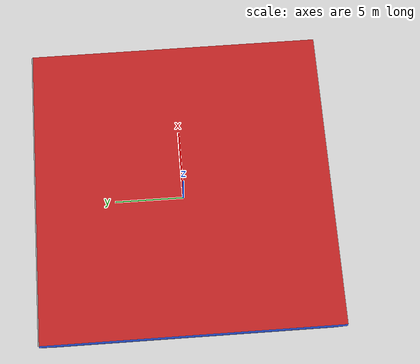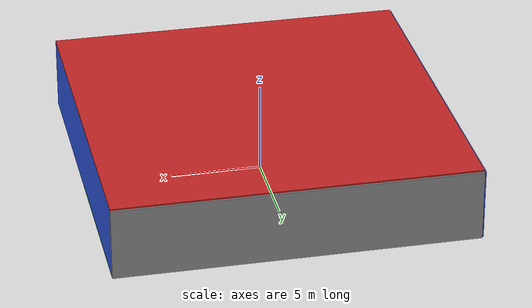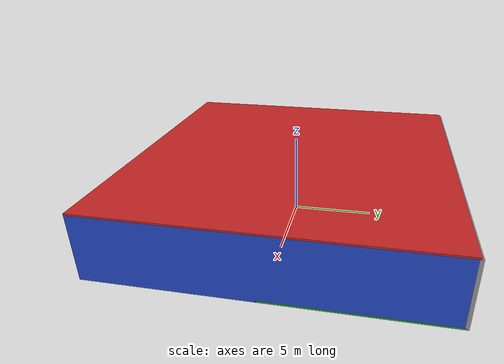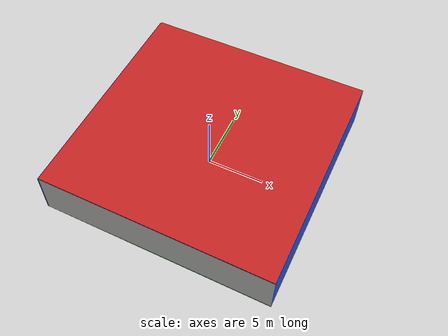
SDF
<sdf version="1.4">
 <world name="default">
  <physics type="ode">
   <max_step_size>0.001</max_step_size>
   <real_time_factor>1</real_time_factor>
   <real_time_update_rate>1000</real_time_update_rate>
   <gravity>0 0 -9.8</gravity>
  </physics>
  <scene><ambient>0.4 0.4 0.4 1</ambient><background>0.7 0.7 0.7 1</background><shadows>1</shadows></scene>
  <model name="Surrounding">
   <static>1</static>
   <link name="Ceiling">
    <collision name="Ceiling_Collision"><geometry><box><size>20 20 0.1</size></box></geometry></collision>
    <visual name="Ceiling_Visual">
     <geometry><box><size>20 20 0.1</size></box></geometry>
     <material>
      <script><uri>file://media/materials/scripts/gazebo.material</uri><name>Gazebo/RedBright</name></script>
     </material>
    </visual>
    <pose>0 0 4.05 0 0 0</pose>
   </link>
   <link name="Wall_South">
    <collision name="Wall_South_Collision">
     <geometry><box><size>20 0 4</size></box></geometry>
     <pose>0 0 2 0 -0 0</pose>
    </collision>
    <visual name="Wall_South_Visual">
     <pose>0 0 2 0 -0 0</pose>
     <geometry><box><size>20 0 4</size></box></geometry>
     <material>
      <script><uri>file://media/materials/scripts/gazebo.material</uri><name>Gazebo/CeilingTiled</name></script>
     </material>
    </visual>
    <velocity_decay><linear>0</linear><angular>0</angular></velocity_decay>
    <pose>0 -10 0 0 -0 0</pose>
   </link>
   <link name="Wall_East">
    <collision name="Wall_21_Collision">
     <geometry><box><size>20 0 4</size></box></geometry>
     <pose>0 0 2 0 -0 0</pose>
    </collision>
    <visual name="Wall_21_Visual">
     <pose>0 0 2 0 -0 0</pose>
     <geometry><box><size>20 0 4</size></box></geometry>
     <material>
      <script><uri>file://media/materials/scripts/gazebo.material</uri><name>Gazebo/Blue</name></script>
     </material>
    </visual>
    <velocity_decay><linear>0</linear><angular>0</angular></velocity_decay>
    <pose>10 0 0 0 -0 1.5708</pose>
   </link>
   <link name="Wall_North">
    <collision name="Wall_22_Collision">
     <geometry><box><size>20 0.2 4</size></box></geometry>
     <pose>0 0 2 0 -0 0</pose>
    </collision>
    <visual name="Wall_22_Visual">
     <pose>0 0 2 0 -0 0</pose>
     <geometry><box><size>20 0.2 4</size></box></geometry>
     <material>
      <script><uri>file://media/materials/scripts/gazebo.material</uri><name>Gazebo/GreyGradientSky</name></script>
     </material>
    </visual>
    <velocity_decay><linear>0</linear><angular>0</angular></velocity_decay>
    <pose>0 10 0 0 -0 0</pose>
   </link>
   <link name="Wall_West">
    <collision name="Wall_23_Collision">
     <geometry><box><size>20 0.2 4</size></box></geometry>
     <pose>0 0 2 0 -0 0</pose>
    </collision>
    <visual name="Wall_23_Visual">
     <pose>0 0 2 0 -0 0</pose>
     <geometry><box><size>20 0.2 4</size></box></geometry>
     <material>
      <script><uri>file://media/materials/scripts/gazebo.material</uri><name>Gazebo/BlueGlow</name></script>
     </material>
    </visual>
    <velocity_decay><linear>0</linear><angular>0</angular></velocity_decay>
    <pose>-10 0 0 0 0 -1.5708</pose>
   </link>
   <link name="Ground_link">
    <collision name="collision">
     <pose>0 0 .05 0 -0 0</pose>
     <geometry><box><size>20 20 0.1</size></box></geometry>
    </collision>
    <visual name="visual">
     <pose>0 0 .05 0 -0 0</pose>
     <geometry><box><size>20 20 0.1</size></box></geometry>
     <material>
      <script><uri>file://media/materials/scripts/gazebo.material</uri><name>Gazebo/GreenGlow</name></script>
     </material>
    </visual>
   </link>
   <static>1</static>
  </model>
  <spherical_coordinates>
   <surface_model>EARTH_WGS84</surface_model>
   <latitude_deg>0</latitude_deg>
   <longitude_deg>0</longitude_deg>
   <elevation>0</elevation>
   <heading_deg>0</heading_deg>
  </spherical_coordinates>
  <light name="lightball_0" type="diffuse">
   <diffuse>0.8 0.8 0.8 1</diffuse>
   <specular>0.2 0.2 0.2 1</specular>
   <attenuation>
    <range>100</range>
    <constant>0.7</constant>
    <linear>0.01</linear>
    <quadratic>0.001</quadratic>
   </attenuation>
   <direction>-0.5 0.1 -0.9</direction>
   <pose>8.9056583054 -8.3215416375 2.15979298549 0 0 0</pose>
  </light>
  <light name="lightball_1" type="diffuse">
   <diffuse>0.8 0.8 0.8 1</diffuse>
   <specular>0.2 0.2 0.2 1</specular>
   <attenuation>
    <range>100</range>
    <constant>0.7</constant>
    <linear>0.01</linear>
    <quadratic>0.001</quadratic>
   </attenuation>
   <direction>-0.5 0.1 -0.9</direction>
   <pose>-7.41140555375 -0.607892552068 2.54677030918 0 0 0</pose>
  </light>
  <light name="lightball_2" type="diffuse">
   <diffuse>0.8 0.8 0.8 1</diffuse>
   <specular>0.2 0.2 0.2 1</specular>
   <attenuation>
    <range>100</range>
    <constant>0.7</constant>
    <linear>0.01</linear>
    <quadratic>0.001</quadratic>
   </attenuation>
   <direction>-0.5 0.1 -0.9</direction>
   <pose>9.83012416492 7.65004272964 3.80271279207 0 0 0</pose>
  </light>
  <light name="lightball_3" type="diffuse">
   <diffuse>0.8 0.8 0.8 1</diffuse>
   <specular>0.2 0.2 0.2 1</specular>
   <attenuation>
    <range>100</range>
    <constant>0.7</constant>
    <linear>0.01</linear>
    <quadratic>0.001</quadratic>
   </attenuation>
   <direction>-0.5 0.1 -0.9</direction>
   <pose>2.7147552391 -3.8365761758 1.93207375617 0 0 0</pose>
  </light>
  <include><uri>model://cabinet</uri><pose>-2.60339754088 8.37768639628 0 0 0 3.06619352944</pose></include>
  <include><uri>model://table</uri><pose>0.605116329744 8.3405762148 0 0 0 1.68802584759</pose></include>
  <include>
   <uri>model://textured_shapes</uri>
   <pose>4.15654486229 -1.19794777206 0 0 0 2.59351954143</pose>
  </include>
  <include>
   <uri>model://robocup_3Dsim_goal</uri>
   <pose>3.45866040919 0.441729154476 0 0 0 0.554604197398</pose>
  </include>
 </world>
</sdf>

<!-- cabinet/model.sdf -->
<sdf version="1.5">
  <model name="cabinet">
    <static>true</static>
    <link name="cabinet_bottom_plate">
      <inertial>
        <pose>0 0 -1 0 0 0</pose>
        <inertia>
          <ixx>2.050000</ixx>
          <ixy>0</ixy>
          <ixz>0</ixz>
          <iyy>2.050000</iyy>
          <iyz>0</iyz>
          <izz>2.050000</izz>
        </inertia>
        <mass>25.000000</mass>
      </inertial>
      <collision name="cabinet_bottom_plate_geom">
        <pose>0 0 0.010000 0 0 0</pose>
        <geometry>
          <box>
            <size>0.450000 0.450000 0.020000</size>
          </box>
        </geometry>
      </collision>
      <visual name="cabinet_bottom_plate_geom_visual">
        <pose>0 0 0.010000 0 0 0</pose>
        <geometry>
          <box>
            <size>0.450000 0.450000 0.020000</size>
          </box>
        </geometry>
        <material>
          <script>
            <uri>model://media/materials/scripts/gazebo.material</uri>
            <name>Gazebo/Wood</name>
          </script>
        </material>
      </visual>
      <collision name="cabinet_bottom_plate_geom_cabinet_back_plate">
        <pose>0.235000 0 0.510000 0 0 0</pose>
        <geometry>
          <box>
            <size>0.020000 0.450000 1.020000</size>
          </box>
        </geometry>
      </collision>
      <visual name="cabinet_bottom_plate_geom_cabinet_back_plate_visual">
        <pose>0.235000 0 0.510000 0 0 0</pose>
        <geometry>
          <box>
            <size>0.020000 0.450000 1.020000</size>
          </box>
        </geometry>
        <material>
          <script>
            <uri>model://media/materials/scripts/gazebo.material</uri>
            <name>Gazebo/Wood</name>
          </script>
        </material>
      </visual>
      <collision name="cabinet_bottom_plate_geom_cabinet_left_plate">
        <pose>0 0.235000 0.510000 0 0 0</pose>
        <geometry>
          <box>
            <size>0.450000 0.020000 1.020000</size>
          </box>
        </geometry>
      </collision>
      <visual name="cabinet_bottom_plate_geom_cabinet_left_plate_visual">
        <pose>0 0.235000 0.510000 0 0 0</pose>
        <geometry>
          <box>
            <size>0.450000 0.020000 1.020000</size>
          </box>
        </geometry>
        <material>
          <script>
            <uri>model://media/materials/scripts/gazebo.material</uri>
            <name>Gazebo/Wood</name>
          </script>
        </material>
      </visual>
      <collision name="cabinet_bottom_plate_geom_cabinet_middle_plate">
        <pose>0 0 0.510000 0 0 0</pose>
        <geometry>
          <box>
            <size>0.450000 0.450000 0.020000</size>
          </box>
        </geometry>
      </collision>
      <visual name="cabinet_bottom_plate_geom_cabinet_middle_plate_visual">
        <pose>0 0 0.510000 0 0 0</pose>
        <geometry>
          <box>
            <size>0.450000 0.450000 0.020000</size>
          </box>
        </geometry>
        <material>
          <script>
            <uri>model://media/materials/scripts/gazebo.material</uri>
            <name>Gazebo/Wood</name>
          </script>
        </material>
      </visual>
      <collision name="cabinet_bottom_plate_geom_cabinet_right_plate">
        <pose>0 -0.235000 0.510000 0 0 0</pose>
        <geometry>
          <box>
            <size>0.450000 0.020000 1.020000</size>
          </box>
        </geometry>
      </collision>
      <visual name="cabinet_bottom_plate_geom_cabinet_right_plate_visual">
        <pose>0 -0.235000 0.510000 0 0 0</pose>
        <geometry>
          <box>
            <size>0.450000 0.020000 1.020000</size>
          </box>
        </geometry>
        <material>
          <script>
            <uri>model://media/materials/scripts/gazebo.material</uri>
            <name>Gazebo/Wood</name>
          </script>
        </material>
      </visual>
      <collision name="cabinet_bottom_plate_geom_cabinet_top_plate">
        <pose>0 0 1.010000 0 0 0</pose>
        <geometry>
          <box>
            <size>0.450000 0.450000 0.020000</size>
          </box>
        </geometry>
      </collision>
      <visual name="cabinet_bottom_plate_geom_cabinet_top_plate_visual">
        <pose>0 0 1.010000 0 0 0</pose>
        <geometry>
          <box>
            <size>0.450000 0.450000 0.020000</size>
          </box>
        </geometry>
        <material>
          <script>
            <uri>model://media/materials/scripts/gazebo.material</uri>
            <name>Gazebo/Wood</name>
          </script>
        </material>
      </visual>
    </link>
  </model>
</sdf>

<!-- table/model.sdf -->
<sdf version="1.5">
  <model name="table">
    <static>true</static>
    <link name="link">
      <collision name="surface">
        <pose>0 0 1.0 0 0 0</pose>
        <geometry>
          <box>
            <size>1.5 0.8 0.03</size>
          </box>
        </geometry>
        <surface>
          <friction>
            <ode>
              <mu>0.6</mu>
              <mu2>0.6</mu2>
            </ode>
          </friction>
        </surface>
      </collision>
      <visual name="visual1">
        <pose>0 0 1.0 0 0 0</pose>
        <geometry>
          <box>
            <size>1.5 0.8 0.03</size>
          </box>
        </geometry>
        <material>
          <script>
            <uri>model://media/materials/scripts/gazebo.material</uri>
            <name>Gazebo/Wood</name>
          </script>
        </material>
      </visual>
      <collision name="front_left_leg">
        <pose>0.68 0.38 0.5 0 0 0</pose>
        <geometry>
          <cylinder>
            <radius>0.02</radius>
            <length>1.0</length>
          </cylinder>
        </geometry>
      </collision>
      <visual name="front_left_leg">
        <pose>0.68 0.38 0.5 0 0 0</pose>
        <geometry>
          <cylinder>
            <radius>0.02</radius>
            <length>1.0</length>
          </cylinder>
        </geometry>
        <material>
          <script>
            <uri>model://media/materials/scripts/gazebo.material</uri>
            <name>Gazebo/Grey</name>
          </script>
        </material>
      </visual>
      <collision name="front_right_leg">
        <pose>0.68 -0.38 0.5 0 0 0</pose>
        <geometry>
          <cylinder>
            <radius>0.02</radius>
            <length>1.0</length>
          </cylinder>
        </geometry>
      </collision>
      <visual name="front_right_leg">
        <pose>0.68 -0.38 0.5 0 0 0</pose>
        <geometry>
          <cylinder>
            <radius>0.02</radius>
            <length>1.0</length>
          </cylinder>
        </geometry>
        <material>
          <script>
            <uri>model://media/materials/scripts/gazebo.material</uri>
            <name>Gazebo/Grey</name>
          </script>
        </material>
      </visual>
      <collision name="back_right_leg">
        <pose>-0.68 -0.38 0.5 0 0 0</pose>
        <geometry>
          <cylinder>
            <radius>0.02</radius>
            <length>1.0</length>
          </cylinder>
        </geometry>
      </collision>
      <visual name="back_right_leg">
        <pose>-0.68 -0.38 0.5 0 0 0</pose>
        <geometry>
          <cylinder>
            <radius>0.02</radius>
            <length>1.0</length>
          </cylinder>
        </geometry>
        <material>
          <script>
            <uri>model://media/materials/scripts/gazebo.material</uri>
            <name>Gazebo/Grey</name>
          </script>
        </material>
      </visual>
      <collision name="back_left_leg">
        <pose>-0.68 0.38 0.5 0 0 0</pose>
        <geometry>
          <cylinder>
            <radius>0.02</radius>
            <length>1.0</length>
          </cylinder>
        </geometry>
      </collision>
      <visual name="back_left_leg">
        <pose>-0.68 0.38 0.5 0 0 0</pose>
        <geometry>
          <cylinder>
            <radius>0.02</radius>
            <length>1.0</length>
          </cylinder>
        </geometry>
        <material>
          <script>
            <uri>model://media/materials/scripts/gazebo.material</uri>
            <name>Gazebo/Grey</name>
          </script>
        </material>
      </visual>
    </link>
  </model>
</sdf>

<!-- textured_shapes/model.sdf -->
<sdf version="1.6">
  <model name="textured_shapes">
    <pose>0 0 0.5 0 0 0</pose>
    <link name="box">
      <pose>0 -1.5 0 0 0 0</pose>
      <collision name="collision">
        <geometry>
          <box>
            <size>1 1 1</size>
          </box>
        </geometry>
      </collision>
      <visual name="visual">
        <geometry>
          <box>
            <size>1 1 1</size>
          </box>
        </geometry>
        <material>
          <script>
            <uri>model://../model_source/models/textured_shapes/materials/scripts</uri>
            <uri>model://../model_source/models/textured_shapes/materials/textures</uri>
            <name>TexturedShape/Squares</name>
          </script>
        </material>
      </visual>
    </link>
    <link name="sphere">
      <collision name="collision">
        <geometry>
          <sphere>
            <radius>0.5</radius>
          </sphere>
        </geometry>
      </collision>
      <visual name="visual">
        <geometry>
          <sphere>
            <radius>0.5</radius>
          </sphere>
        </geometry>
        <material>
          <script>
            <uri>model://../model_source/models/textured_shapes/materials/scripts</uri>
            <uri>model://../model_source/models/textured_shapes/materials/textures</uri>
            <name>TexturedShape/Squares</name>
          </script>
        </material>
      </visual>
    </link>
    <link name="cylinder">
      <pose>0 1.5 0 0 0 0</pose>
      <collision name="collision">
        <geometry>
          <cylinder>
            <radius>0.5</radius>
            <length>1</length>
          </cylinder>
        </geometry>
      </collision>
      <visual name="visual">
        <geometry>
          <cylinder>
            <radius>0.5</radius>
            <length>1</length>
          </cylinder>
        </geometry>
        <material>
          <script>
            <uri>model://../model_source/models/textured_shapes/materials/scripts</uri>
            <uri>model://../model_source/models/textured_shapes/materials/textures</uri>
            <name>TexturedShape/Squares</name>
          </script>
        </material>
      </visual>
    </link>
  </model>
</sdf>

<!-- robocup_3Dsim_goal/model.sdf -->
<sdf version="1.5">
  <model name="robocup_3d_goal">
    <static>true</static>
    <link name="left_post">
      <pose>0 1.05 0.45 0 0 0</pose>
      <collision name="collision">
        <geometry>
          <cylinder>
            <radius>0.05</radius>
            <length>0.9</length>
          </cylinder>
        </geometry>
      </collision>
      <visual name="visual">
        <geometry>
          <cylinder>
            <radius>0.05</radius>
            <length>0.9</length>
          </cylinder>
        </geometry>
        <material>
          <script>
            <uri>file://media/materials/scripts/gazebo.material</uri>
            <name>Gazebo/ZincYellow</name>
          </script>
        </material>
      </visual>
    </link>
    <link name="left_support_horiz_lower">
      <pose>0.30 1.05 0.01 0 0 0</pose>
      <collision name="collision">
        <geometry>
          <box>
            <size>0.50 0.02 0.02</size>
          </box>
        </geometry>
      </collision>
      <visual name="visual">
        <geometry>
          <box>
            <size>0.50 0.02 0.02</size>
          </box>
        </geometry>
        <material>
          <script>
            <uri>file://media/materials/scripts/gazebo.material</uri>
            <name>Gazebo/White</name>
          </script>
        </material>
      </visual>
    </link>
    <link name="left_support_horiz_upper">
      <pose>0.30 1.05 0.79 0 0 0</pose>
      <collision name="collision">
        <geometry>
          <box>
            <size>0.50 0.02 0.02</size>
          </box>
        </geometry>
      </collision>
      <visual name="visual">
        <geometry>
          <box>
            <size>0.50 0.02 0.02</size>
          </box>
        </geometry>
        <material>
          <script>
            <uri>file://media/materials/scripts/gazebo.material</uri>
            <name>Gazebo/White</name>
          </script>
        </material>
      </visual>
    </link>
    <link name="left_support_vertical">
      <pose>0.56 1.05 0.4 0 1.5708 0</pose>
      <collision name="collision">
        <geometry>
          <box>
            <size>0.80 0.02 0.02</size>
          </box>
        </geometry>
      </collision>
      <visual name="visual">
        <geometry>
          <box>
            <size>0.80 0.02 0.02</size>
          </box>
        </geometry>
        <material>
          <script>
            <uri>file://media/materials/scripts/gazebo.material</uri>
            <name>Gazebo/White</name>
          </script>
        </material>
      </visual>
    </link>
    <link name="right_support_horiz_lower">
      <pose>0.30 -1.05 0.01 0 0 0</pose>
      <collision name="collision">
        <geometry>
          <box>
            <size>0.50 0.02 0.02</size>
          </box>
        </geometry>
      </collision>
      <visual name="visual">
        <geometry>
          <box>
            <size>0.50 0.02 0.02</size>
          </box>
        </geometry>
        <material>
          <script>
            <uri>file://media/materials/scripts/gazebo.material</uri>
            <name>Gazebo/White</name>
          </script>
        </material>
      </visual>
    </link>
    <link name="right_support_horiz_upper">
      <pose>0.30 -1.05 0.79 0 0 0</pose>
      <collision name="collision">
        <geometry>
          <box>
            <size>0.50 0.02 0.02</size>
          </box>
        </geometry>
      </collision>
      <visual name="visual">
        <geometry>
          <box>
            <size>0.50 0.02 0.02</size>
          </box>
        </geometry>
        <material>
          <script>
            <uri>file://media/materials/scripts/gazebo.material</uri>
            <name>Gazebo/White</name>
          </script>
        </material>
      </visual>
    </link>
    <link name="right_support_vertical">
      <pose>0.56 -1.05 0.4 0 1.5708 0</pose>
      <collision name="collision">
        <geometry>
          <box>
            <size>0.80 0.02 0.02</size>
          </box>
        </geometry>
      </collision>
      <visual name="visual">
        <geometry>
          <box>
            <size>0.80 0.02 0.02</size>
          </box>
        </geometry>
        <material>
          <script>
            <uri>file://media/materials/scripts/gazebo.material</uri>
            <name>Gazebo/White</name>
          </script>
        </material>
      </visual>
    </link>
    <link name="center_support_horiz_lower">
      <pose>0.56 0 0.01 0 1.5708 0</pose>
      <collision name="collision">
        <geometry>
          <box>
            <size>0.02 2.08 0.02</size>
          </box>
        </geometry>
      </collision>
      <visual name="visual">
        <geometry>
          <box>
            <size>0.02 2.08 0.02</size>
          </box>
        </geometry>
        <material>
          <script>
            <uri>file://media/materials/scripts/gazebo.material</uri>
            <name>Gazebo/White</name>
          </script>
        </material>
      </visual>
    </link>
    <link name="center_support_horiz_upper">
      <pose>0.56 0 0.79 0 1.5708 0</pose>
      <collision name="collision">
        <geometry>
          <box>
            <size>0.02 2.08 0.02</size>
          </box>
        </geometry>
      </collision>
      <visual name="visual">
        <geometry>
          <box>
            <size>0.02 2.08 0.02</size>
          </box>
        </geometry>
        <material>
          <script>
            <uri>file://media/materials/scripts/gazebo.material</uri>
            <name>Gazebo/White</name>
          </script>
        </material>
      </visual>
    </link>
    <link name="right_post">
      <pose>0 -1.05 0.45 0 0 0</pose>
      <collision name="collision">
        <geometry>
          <cylinder>
            <radius>0.05</radius>
            <length>0.9</length>
          </cylinder>
        </geometry>
      </collision>
      <visual name="visual">
        <geometry>
          <cylinder>
            <radius>0.05</radius>
            <length>0.9</length>
          </cylinder>
        </geometry>
        <material>
          <script>
            <uri>file://media/materials/scripts/gazebo.material</uri>
            <name>Gazebo/ZincYellow</name>
          </script>
        </material>
      </visual>
    </link>
    <link name="crossbar">
      <pose>0 0 0.85 1.57 1.57 0</pose>
      <collision name="collision">
        <geometry>
          <cylinder>
            <radius>0.05</radius>
            <length>2.0</length>
          </cylinder>
        </geometry>
      </collision>
      <visual name="visual">
        <geometry>
          <cylinder>
            <radius>0.05</radius>
            <length>2.0</length>
          </cylinder>
        </geometry>
        <material>
          <script>
            <uri>file://media/materials/scripts/gazebo.material</uri>
            <name>Gazebo/ZincYellow</name>
          </script>
        </material>
      </visual>
    </link>
    <link name="center_net">
      <pose>0.56 0 0.40 0 0 0</pose>
      <collision name="collision">
        <geometry>
          <box>
            <size>0.01 2.1 0.80</size>
          </box>
        </geometry>
      </collision>
      <visual name="visual">
        <geometry>
          <box>
            <size>0.01 2.1 0.80</size>
          </box>
        </geometry>
        <material>
          <script>
            <uri>model://../model_source/models/robocup09_spl_field/materials/scripts/</uri>
            <uri>model://../model_source/models/robocup09_spl_field/materials/textures/</uri>
            <name>RoboCup/Net</name>
          </script>
        </material>
      </visual>
    </link>
    <link name="left_net">
      <pose>0.30 1.05 0.40 0 0 0</pose>
      <collision name="collision">
        <geometry>
          <box>
            <size>0.50 0.01 0.76</size>
          </box>
        </geometry>
      </collision>
      <visual name="visual">
        <geometry>
          <box>
            <size>0.50 0.01 0.76</size>
          </box>
        </geometry>
        <material>
          <script>
            <uri>model://../model_source/models/robocup09_spl_field/materials/scripts/</uri>
            <uri>model://../model_source/models/robocup09_spl_field/materials/textures/</uri>
            <name>RoboCup/Net</name>
          </script>
        </material>
      </visual>
    </link>
    <link name="right_net">
      <pose>0.30 -1.05 0.40 0 0 0</pose>
      <collision name="collision">
        <geometry>
          <box>
            <size>0.50 0.01 0.76</size>
          </box>
        </geometry>
      </collision>
      <visual name="visual">
        <geometry>
          <box>
            <size>0.50 0.01 0.76</size>
          </box>
        </geometry>
        <material>
          <script>
            <uri>model://../model_source/models/robocup09_spl_field/materials/scripts/</uri>
            <uri>model://../model_source/models/robocup09_spl_field/materials/textures/</uri>
            <name>RoboCup/Net</name>
          </script>
        </material>
      </visual>
    </link>
  </model>
</sdf>
